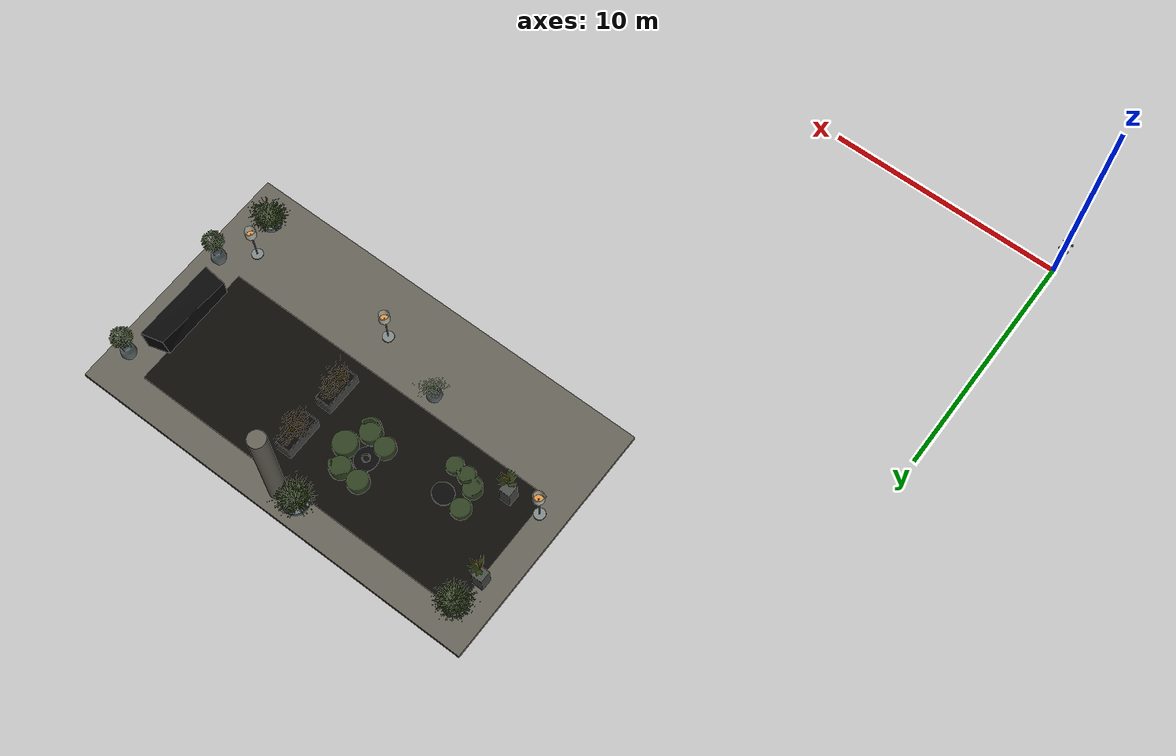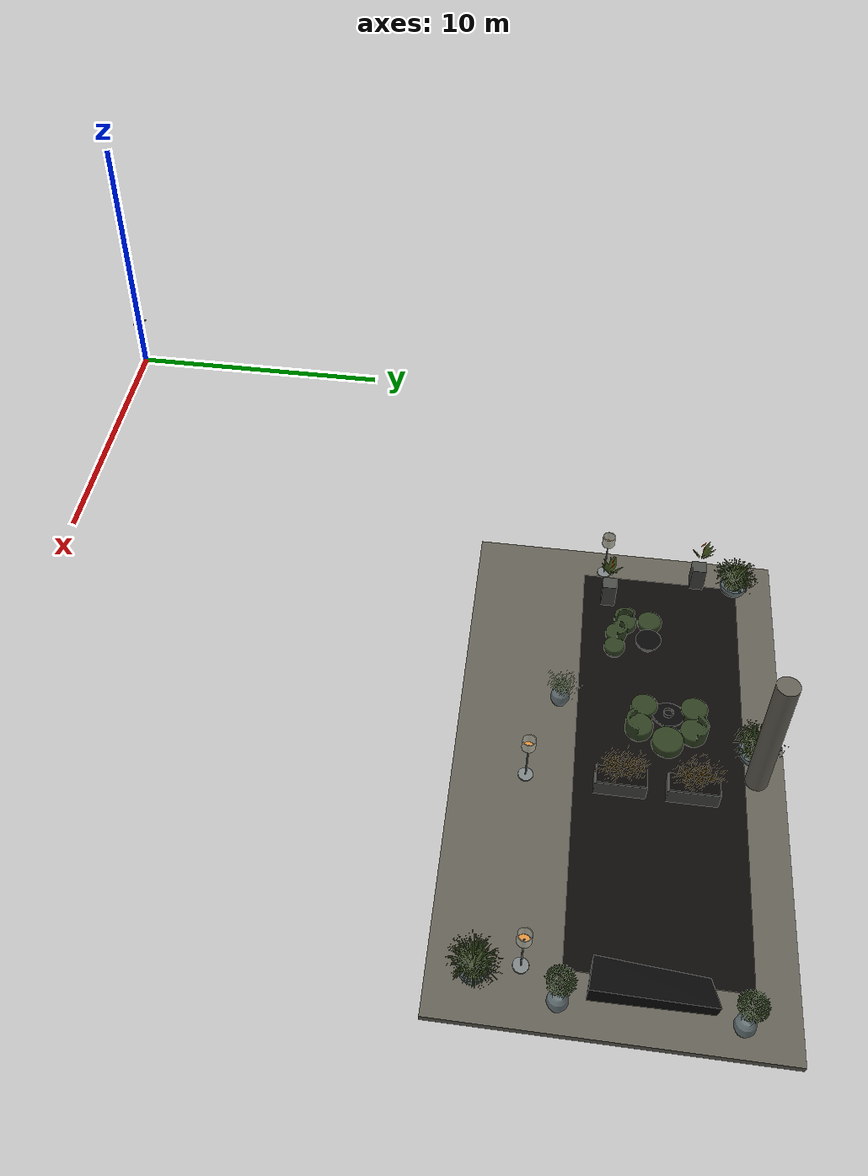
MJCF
<mujoco model="metric quadrotor world"><option timestep=".004" gravity="0 0 -9.81" /><visual><global offwidth="960" offheight="640" /><headlight ambient=".3 .3 .3" diffuse=".5 .5 .5" specular=".1 .1 .1" /></visual><worldbody><body name="quad" pos="0 0 2"><freejoint /><inertial pos="0 0 0" mass="1" diaginertia=".02 .02 .035" /><geom name="quad_body" type="sphere" size=".14" rgba=".1 .2 .8 1" /><geom name="arm_0" type="capsule" fromto="0 0 0 0.18 0.18 0.0" size=".018" rgba=".15 .15 .17 1" /><site name="motor_0" pos="0.18 0.18 0.0" size=".04" /><geom name="arm_1" type="capsule" fromto="0 0 0 -0.18 0.18 0.0" size=".018" rgba=".15 .15 .17 1" /><site name="motor_1" pos="-0.18 0.18 0.0" size=".04" /><geom name="arm_2" type="capsule" fromto="0 0 0 -0.18 -0.18 0.0" size=".018" rgba=".15 .15 .17 1" /><site name="motor_2" pos="-0.18 -0.18 0.0" size=".04" /><geom name="arm_3" type="capsule" fromto="0 0 0 0.18 -0.18 0.0" size=".018" rgba=".15 .15 .17 1" /><site name="motor_3" pos="0.18 -0.18 0.0" size=".04" /></body><light pos="17 22 9" dir="0 0 -1" directional="true" diffuse=".75 .75 .75" ambient=".35 .35 .35" castshadow="false" /><geom name="m4_visual_0" type="mesh" mesh="m4_visual_0" contype="0" conaffinity="0" rgba="0.8500000238418579 0.25 0.014999999664723873 1.0" /><geom name="m4_visual_1" type="mesh" mesh="m4_visual_1" contype="0" conaffinity="0" rgba="0.03799999877810478 0.03500000014901161 0.028999999165534973 1.0" /><geom name="m4_visual_2" type="mesh" mesh="m4_visual_2" contype="0" conaffinity="0" rgba="0.49000000953674316 0.5199999809265137 0.5199999809265137 1.0" /><geom name="m4_visual_3" type="mesh" mesh="m4_visual_3" contype="0" conaffinity="0" rgba="0.02800000086426735 0.029999999329447746 0.026000000536441803 1.0" /><geom name="m4_visual_4" type="mesh" mesh="m4_visual_4" contype="0" conaffinity="0" rgba="0.10499999672174454 0.1599999964237213 0.04500000178813934 1.0" /><geom name="m4_visual_5" type="mesh" mesh="m4_visual_5" contype="0" conaffinity="0" rgba="0.1899999976158142 0.25 0.06700000166893005 1.0" /><geom name="m4_visual_6" type="mesh" mesh="m4_visual_6" contype="0" conaffinity="0" rgba="0.04500000178813934 0.039000000804662704 0.027000000700354576 1.0" /><geom name="m4_visual_7" type="mesh" mesh="m4_visual_7" contype="0" conaffinity="0" rgba="0.41999998688697815 0.3100000023841858 0.054999999701976776 1.0" /><geom name="m4_visual_8" type="mesh" mesh="m4_visual_8" contype="0" conaffinity="0" rgba="0.2800000011920929 0.28999999165534973 0.27000001072883606 1.0" /><geom name="m4_visual_9" type="mesh" mesh="m4_visual_9" contype="0" conaffinity="0" rgba="0.7699999809265137 0.7699999809265137 0.699999988079071 1.0" /><geom name="m4_visual_10" type="mesh" mesh="m4_visual_10" contype="0" conaffinity="0" rgba="0.38999998569488525 0.4399999976158142 0.44999998807907104 1.0" /><geom name="m4_visual_11" type="mesh" mesh="m4_visual_11" contype="0" conaffinity="0" rgba="0.026000000536441803 0.019999999552965164 0.012000000104308128 1.0" /><geom name="m4_visual_12" type="mesh" mesh="m4_visual_12" contype="0" conaffinity="0" rgba="0.18000000715255737 0.24500000476837158 0.125 1.0" /><geom name="m4_visual_13" type="mesh" mesh="m4_visual_13" contype="0" conaffinity="0" rgba="0.38999998569488525 0.375 0.33500000834465027 1.0" /><geom name="m4_visual_14" type="mesh" mesh="m4_visual_14" contype="0" conaffinity="0" rgba="0.8799999952316284 0.5699999928474426 0.23999999463558197 1.0" /></worldbody><actuator><general name="thrust_0" site="motor_0" gear="0 0 1 0 0 0.02" ctrllimited="true" ctrlrange="0 8" /><general name="thrust_1" site="motor_1" gear="0 0 1 0 0 -0.02" ctrllimited="true" ctrlrange="0 8" /><general name="thrust_2" site="motor_2" gear="0 0 1 0 0 0.02" ctrllimited="true" ctrlrange="0 8" /><general name="thrust_3" site="motor_3" gear="0 0 1 0 0 -0.02" ctrllimited="true" ctrlrange="0 8" /></actuator><asset><mesh name="m4_visual_0" file="/home/hchen/Documents/astraBlenderTest/world_model_blog/experiments/tasks/g1_M4/presentation_20260924/visual_000.obj" inertia="shell" /><mesh name="m4_visual_1" file="/home/hchen/Documents/astraBlenderTest/world_model_blog/experiments/tasks/g1_M4/presentation_20260924/visual_001.obj" inertia="shell" /><mesh name="m4_visual_2" file="/home/hchen/Documents/astraBlenderTest/world_model_blog/experiments/tasks/g1_M4/presentation_20260924/visual_002.obj" inertia="shell" /><mesh name="m4_visual_3" file="/home/hchen/Documents/astraBlenderTest/world_model_blog/experiments/tasks/g1_M4/presentation_20260924/visual_003.obj" inertia="shell" /><mesh name="m4_visual_4" file="/home/hchen/Documents/astraBlenderTest/world_model_blog/experiments/tasks/g1_M4/presentation_20260924/visual_004.obj" inertia="shell" /><mesh name="m4_visual_5" file="/home/hchen/Documents/astraBlenderTest/world_model_blog/experiments/tasks/g1_M4/presentation_20260924/visual_005.obj" inertia="shell" /><mesh name="m4_visual_6" file="/home/hchen/Documents/astraBlenderTest/world_model_blog/experiments/tasks/g1_M4/presentation_20260924/visual_006.obj" inertia="shell" /><mesh name="m4_visual_7" file="/home/hchen/Documents/astraBlenderTest/world_model_blog/experiments/tasks/g1_M4/presentation_20260924/visual_007.obj" inertia="shell" /><mesh name="m4_visual_8" file="/home/hchen/Documents/astraBlenderTest/world_model_blog/experiments/tasks/g1_M4/presentation_20260924/visual_008.obj" inertia="shell" /><mesh name="m4_visual_9" file="/home/hchen/Documents/astraBlenderTest/world_model_blog/experiments/tasks/g1_M4/presentation_20260924/visual_009.obj" inertia="shell" /><mesh name="m4_visual_10" file="/home/hchen/Documents/astraBlenderTest/world_model_blog/experiments/tasks/g1_M4/presentation_20260924/visual_010.obj" inertia="shell" /><mesh name="m4_visual_11" file="/home/hchen/Documents/astraBlenderTest/world_model_blog/experiments/tasks/g1_M4/presentation_20260924/visual_011.obj" inertia="shell" /><mesh name="m4_visual_12" file="/home/hchen/Documents/astraBlenderTest/world_model_blog/experiments/tasks/g1_M4/presentation_20260924/visual_012.obj" inertia="shell" /><mesh name="m4_visual_13" file="/home/hchen/Documents/astraBlenderTest/world_model_blog/experiments/tasks/g1_M4/presentation_20260924/visual_013.obj" inertia="shell" /><mesh name="m4_visual_14" file="/home/hchen/Documents/astraBlenderTest/world_model_blog/experiments/tasks/g1_M4/presentation_20260924/visual_014.obj" inertia="shell" /></asset></mujoco>
